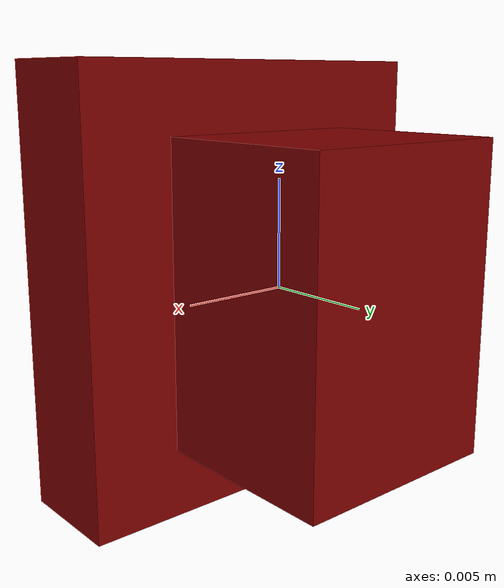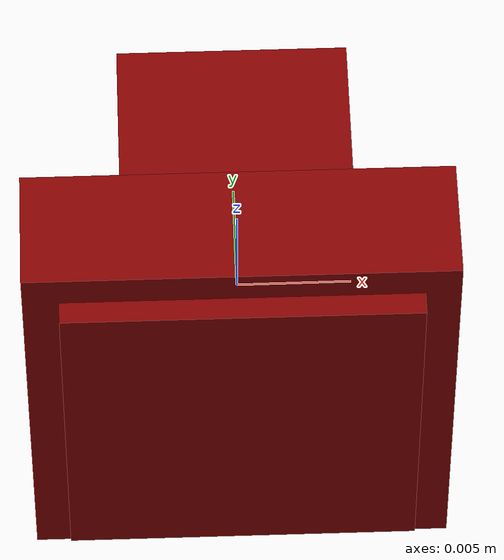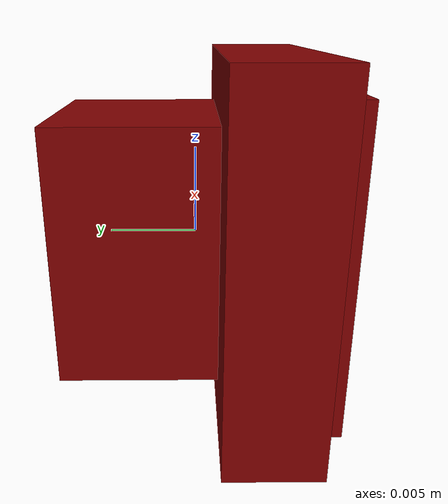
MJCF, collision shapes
<?xml version='1.0' encoding='UTF-8'?>
<mujoco model="model">
  <option timestep="0.002" gravity="0.0 0.0 -9.81"/>
  <compiler angle="radian"/>
  <asset>
    <mesh file="visuals/CabinetHandle041.obj" name="CabinetHandle041_vis"/>
    <texture file="visuals/T_BC001.png" name="tex" type="2d"/>
    <material name="mat" rgba="1 1 1 1.0" texture="tex" shininess="0.4472135901451111" specular="0.3103448502657381"/>
  </asset>
  <default>
    <default class="visual">
      <geom conaffinity="0" contype="0" group="1" type="mesh"/>
    </default>
    <default class="collision">
      <geom group="0" rgba="0.5 0 0 0.5" density="1.0" solref="0.004 1" solimp="0.998 0.998 0.001"/>
    </default>
    <default class="spawn">
      <geom group="0" rgba="1 1 1 0.5" contype="0" conaffinity="0"/>
      <site group="0" rgba="1 1 1 0.5"/>
    </default>
    <default class="region">
      <geom group="1" conaffinity="0" contype="0" rgba="0 1 0 0" mass="0"/>
    </default>
  </default>
  <worldbody>
    <body>
      <body name="object">
        <geom mesh="CabinetHandle041_vis" type="mesh" solimp="0.998 0.998 0.001" solref="0.001 1" friction="0.95 0.3 0.1" class="visual" material="mat"/>
        <geom type="box" pos="8.221550160669722e-06 -0.006838402710855007 -6.4675128669478e-05" size="0.007665995508432388 0.0007401001057587564 0.008684500120580196" quat="1.0 0.0 0.0 0.0" class="collision"/>
        <geom type="box" pos="-2.7401842999097425e-06 -0.0038937495555728674 -2.169570143450983e-05" size="0.009194012731313705 0.0026767682284116745 0.010218950919806957" quat="1.0 0.0 0.0 0.0" class="collision"/>
        <geom type="box" pos="6.045961526979227e-06 0.0031989230774343014 -5.400899226515321e-06" size="0.005017661489546299 0.004387146793305874 0.007022843696177006" quat="1.0 0.0 0.0 0.0" class="collision"/>
        <geom class="region" name="reg_main" type="box" pos="0.0 0.0 0.0" size="0.010182902052998544 0.008492898963391782 0.011190322995185853"/>
      </body>
    </body>
  </worldbody>
  <actuator/>
</mujoco>
